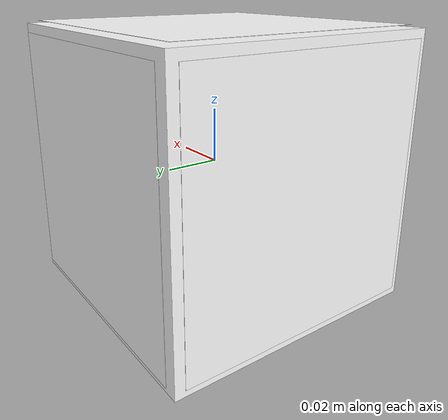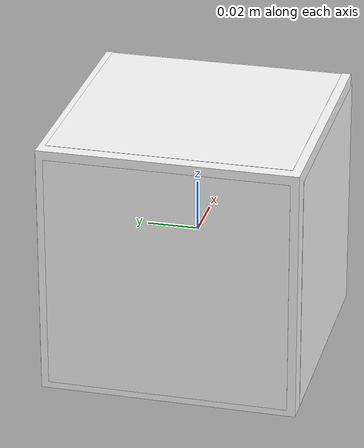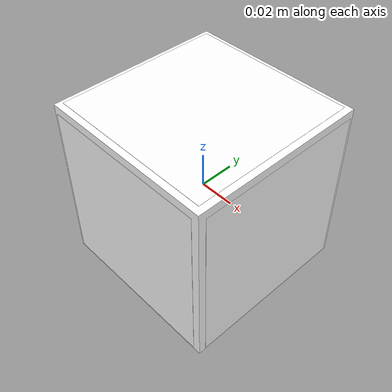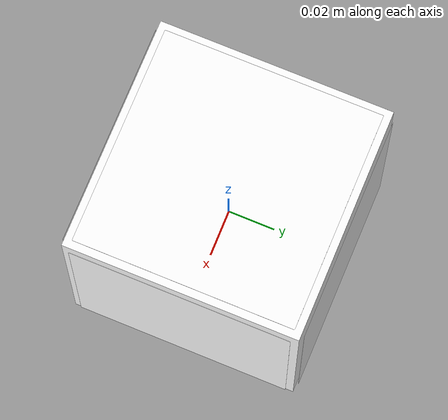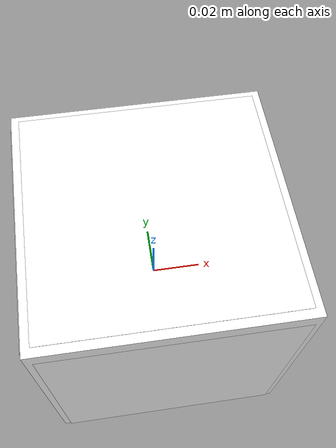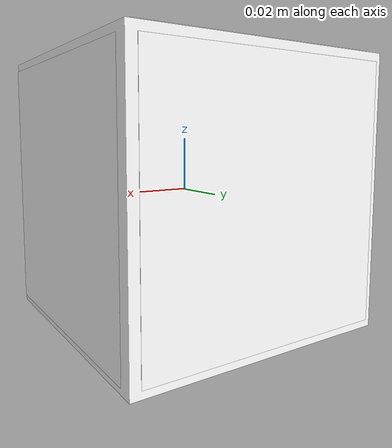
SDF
<?xml  version="1.0" ?>
<sdf version="1.5">

    <model name='aruco_box'>
        <pose>0 0 0 0 0 0</pose>
        <link name='link'>
            <inertial>
                <pose>0 0 0 0 -0 0</pose>
                <mass>0.281</mass>
                <inertia>
                    <ixx>0.0006167</ixx>
                    <ixy>0</ixy>
                    <ixz>0</ixz>
                    <iyy>0.0006167</iyy>
                    <iyz>0</iyz>
                    <izz>0.0006167</izz>
                </inertia>
            </inertial>
            <collision name="collision">
                <geometry>
                    <box>
                        <size>0.1 0.1 0.1</size>
                    </box>
                </geometry>
                <surface>
                    <contact>
                        <ode>
                            <max_vel>1</max_vel>
                            <min_depth>0.001</min_depth>
                            <kp>1000000</kp>
                            <kd>10</kd>
                        </ode>
                    </contact>
                    <friction>
                        <ode>
                            <mu>1</mu>
                            <mu2>1</mu2>
                        </ode>
                    </friction>
                </surface>
            </collision>

            <visual name='box_visual'>
                <cast_shadows>false</cast_shadows>
                    <geometry>
                        <box>
                            <size>0.1 0.1 0.1</size>
                        </box>
                    </geometry>
                <material>
                    <ambient>1 1 1 1</ambient>
                    <diffuse>1 1 1 1</diffuse>
                    <specular>1 1 1 1</specular>
                    <emissive>0.6 0.6 0.6 1</emissive>
                </material>
            </visual>

            <visual name='aruco_visual1'>
                <pose>0.051 0.0 0.0 0.0 1.5708 0.0</pose>
                <cast_shadows>0</cast_shadows>
                <geometry>
                    <plane>
                        <normal>0 0 1</normal>
                        <size>0.0937 0.0937</size>
                    </plane>
                </geometry>
                <material>
                    <pbr>
                        <metal>
                            <albedo_map>model://aruco_box/materials/textures/marker0.png</albedo_map>
                            <normal_map>model://aruco_box/materials/textures/marker0.png</normal_map>
                        </metal>
                    </pbr>
                    <ambient>1 1 1 1</ambient>
                    <diffuse>1 1 1 1</diffuse>
                    <specular>1 1 1 1</specular>
                    <emissive>0.0 0.0 0.0 1</emissive>
                </material>
            </visual>

            <visual name='aruco_visual2'>
                <pose>-0.051 0.0 0.0 0.0 -1.5708 0.0</pose>
                <cast_shadows>0</cast_shadows>
                <geometry>
                    <plane>
                        <normal>0 0 1</normal>
                        <size>0.0937 0.0937</size>
                    </plane>
                </geometry>
                <material>
                    <pbr>
                        <metal>
                            <albedo_map>model://aruco_box/materials/textures/marker1.png</albedo_map>
                            <normal_map>model://aruco_box/materials/textures/marker1.png</normal_map>
                        </metal>
                    </pbr>
                    <ambient>1 1 1 1</ambient>
                    <diffuse>1 1 1 1</diffuse>
                    <specular>1 1 1 1</specular>
                    <emissive>0.0 0.0 0.0 1</emissive>
                </material>
            </visual>

            <visual name='aruco_visual3'>
                <pose>0.0 0.051 0.0 -1.5708 0.0 0.0</pose>
                <cast_shadows>0</cast_shadows>
                <geometry>
                    <plane>
                        <normal>0 0 1</normal>
                        <size>0.0937 0.0937</size>
                    </plane>
                </geometry>
                <material>
                    <pbr>
                        <metal>
                            <albedo_map>model://aruco_box/materials/textures/marker2.png</albedo_map>
                            <normal_map>model://aruco_box/materials/textures/marker2.png</normal_map>
                        </metal>
                    </pbr>
                    <ambient>1 1 1 1</ambient>
                    <diffuse>1 1 1 1</diffuse>
                    <specular>1 1 1 1</specular>
                    <emissive>0.0 0.0 0.0 1</emissive>
                </material>
            </visual>

            <visual name='aruco_visual4'>
                <pose>0.0 -0.051 0.0 1.5708 0.0 0.0</pose>
                <cast_shadows>0</cast_shadows>
                <geometry>
                    <plane>
                        <normal>0 0 1</normal>
                        <size>0.0937 0.0937</size>
                    </plane>
                </geometry>
                <material>
                    <pbr>
                        <metal>
                            <albedo_map>model://aruco_box/materials/textures/marker3.png</albedo_map>
                            <normal_map>model://aruco_box/materials/textures/marker3.png</normal_map>
                        </metal>
                    </pbr>
                    <ambient>1 1 1 1</ambient>
                    <diffuse>1 1 1 1</diffuse>
                    <specular>1 1 1 1</specular>
                    <emissive>0.0 0.0 0.0 1</emissive>
                </material>
            </visual>

            <visual name='aruco_visual5'>
                <pose>0.0 0.0 0.051 0.0 0.0 0.0</pose>
                <cast_shadows>0</cast_shadows>
                <geometry>
                    <plane>
                        <normal>0 0 1</normal>
                        <size>0.0937 0.0937</size>
                    </plane>
                </geometry>
                <material>
                    <pbr>
                        <metal>
                            <albedo_map>model://aruco_box/materials/textures/marker4.png</albedo_map>
                            <normal_map>model://aruco_box/materials/textures/marker4.png</normal_map>
                        </metal>
                    </pbr>
                    <ambient>1 1 1 1</ambient>
                    <diffuse>1 1 1 1</diffuse>
                    <specular>1 1 1 1</specular>
                    <emissive>0.0 0.0 0.0 1</emissive>
                </material>
            </visual>

            <visual name='aruco_visual6'>
                <pose>0.0 0.0 -0.051 0.0 -3.141592654 0.0</pose>
                <cast_shadows>0</cast_shadows>
                <geometry>
                    <plane>
                        <normal>0 0 1</normal>
                        <size>0.0937 0.0937</size>
                    </plane>
                </geometry>
                <material>
                    <pbr>
                        <metal>
                            <albedo_map>model://aruco_box/materials/textures/marker5.png</albedo_map>
                            <normal_map>model://aruco_box/materials/textures/marker5.png</normal_map>
                        </metal>
                    </pbr>
                    <ambient>1 1 1 1</ambient>
                    <diffuse>1 1 1 1</diffuse>
                    <specular>1 1 1 1</specular>
                    <emissive>0.0 0.0 0.0 1</emissive>
                </material>
            </visual>

        </link>
    </model>
</sdf>
